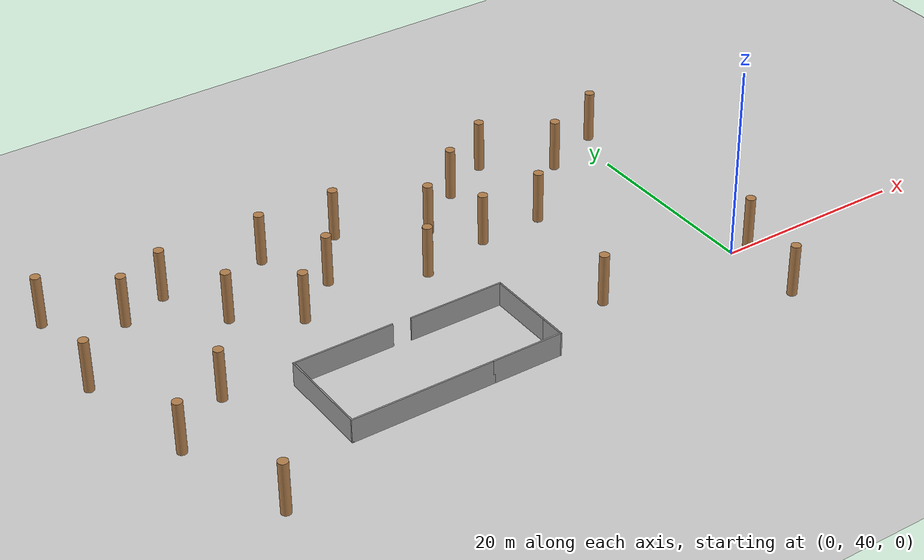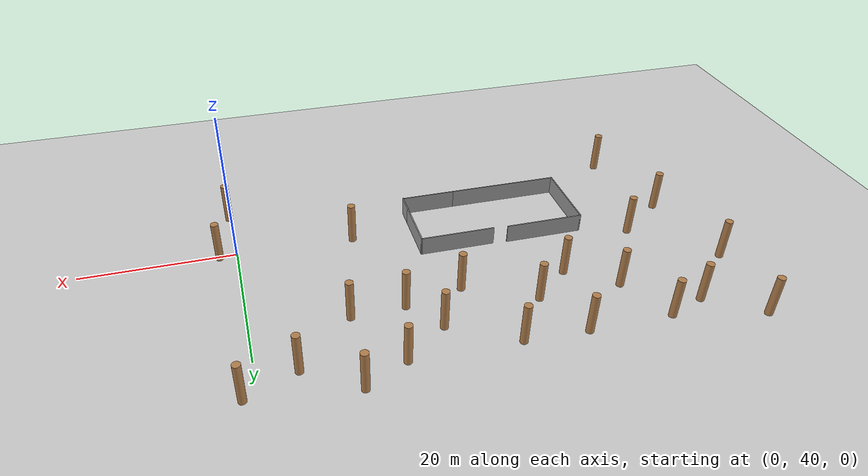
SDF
<sdf version="1.6">
 <world name="default">
  <model name="ground_plane">
   <static>1</static>
   <link name="link">
    <collision name="collision">
     <geometry><plane><normal>0 0 1</normal><size>100 100</size></plane></geometry>
     <surface><friction><ode><mu>100</mu><mu2>50</mu2></ode></friction></surface>
    </collision>
    <visual name="visual">
     <cast_shadows>0</cast_shadows>
     <geometry><plane><normal>0 0 1</normal><size>100 100</size></plane></geometry>
     <material>
      <script><uri>file://media/materials/scripts/gazebo.material</uri><name>Gazebo/Grey</name></script>
     </material>
    </visual>
   </link>
  </model>
  <model name="WoodPillars">
   <link name="link_clone_13">
    <inertial>
     <mass>1</mass>
     <inertia><ixx>0.145833</ixx><ixy>0</ixy><ixz>0</ixz><iyy>0.145833</iyy><iyz>0</iyz><izz>0.125</izz></inertia>
    </inertial>
    <pose>32.2715 -23.3528 -3e-06 0 -0 -0.001289</pose>
    <visual name="visual">
     <geometry><cylinder><radius>0.5</radius><length>5.50507</length></cylinder></geometry>
     <material>
      <script><name>Gazebo/Wood</name><uri>file://media/materials/scripts/gazebo.material</uri></script>
      <shader type="pixel"/>
     </material>
    </visual>
    <collision name="collision">
     <geometry><cylinder><radius>0.5</radius><length>5.50507</length></cylinder></geometry>
     <surface>
      <friction>
       <ode><mu>1</mu><mu2>1</mu2><fdir1>0 0 0</fdir1><slip1>0</slip1><slip2>0</slip2></ode>
       <torsional>
        <coefficient>1</coefficient>
        <patch_radius>0</patch_radius>
        <surface_radius>0</surface_radius>
        <use_patch_radius>1</use_patch_radius>
        <ode><slip>0</slip></ode>
       </torsional>
      </friction>
      <bounce><restitution_coefficient>0</restitution_coefficient><threshold>1e+06</threshold></bounce>
      <contact>
       <collide_without_contact>0</collide_without_contact>
       <collide_without_contact_bitmask>1</collide_without_contact_bitmask>
       <collide_bitmask>1</collide_bitmask>
       <ode>
        <soft_cfm>0</soft_cfm>
        <soft_erp>0.2</soft_erp>
        <kp>1e+13</kp>
        <kd>1</kd>
        <max_vel>0.01</max_vel>
        <min_depth>0</min_depth>
       </ode>
       <bullet>
        <split_impulse>1</split_impulse>
        <split_impulse_penetration_threshold>-0.01</split_impulse_penetration_threshold>
        <soft_cfm>0</soft_cfm>
        <soft_erp>0.2</soft_erp>
        <kp>1e+13</kp>
        <kd>1</kd>
       </bullet>
      </contact>
     </surface>
    </collision>
   </link>
   <link name="link_clone_16">
    <inertial>
     <mass>1</mass>
     <inertia><ixx>0.145833</ixx><ixy>0</ixy><ixz>0</ixz><iyy>0.145833</iyy><iyz>0</iyz><izz>0.125</izz></inertia>
    </inertial>
    <pose>32.9662 -11.9429 -3e-06 0 -0 -0.001289</pose>
    <visual name="visual">
     <geometry><cylinder><radius>0.5</radius><length>5.50507</length></cylinder></geometry>
     <material>
      <script><name>Gazebo/Wood</name><uri>file://media/materials/scripts/gazebo.material</uri></script>
      <shader type="pixel"/>
     </material>
    </visual>
    <collision name="collision">
     <geometry><cylinder><radius>0.5</radius><length>5.50507</length></cylinder></geometry>
     <surface>
      <friction>
       <ode><mu>1</mu><mu2>1</mu2><fdir1>0 0 0</fdir1><slip1>0</slip1><slip2>0</slip2></ode>
       <torsional>
        <coefficient>1</coefficient>
        <patch_radius>0</patch_radius>
        <surface_radius>0</surface_radius>
        <use_patch_radius>1</use_patch_radius>
        <ode><slip>0</slip></ode>
       </torsional>
      </friction>
      <bounce><restitution_coefficient>0</restitution_coefficient><threshold>1e+06</threshold></bounce>
      <contact>
       <collide_without_contact>0</collide_without_contact>
       <collide_without_contact_bitmask>1</collide_without_contact_bitmask>
       <collide_bitmask>1</collide_bitmask>
       <ode>
        <soft_cfm>0</soft_cfm>
        <soft_erp>0.2</soft_erp>
        <kp>1e+13</kp>
        <kd>1</kd>
        <max_vel>0.01</max_vel>
        <min_depth>0</min_depth>
       </ode>
       <bullet>
        <split_impulse>1</split_impulse>
        <split_impulse_penetration_threshold>-0.01</split_impulse_penetration_threshold>
        <soft_cfm>0</soft_cfm>
        <soft_erp>0.2</soft_erp>
        <kp>1e+13</kp>
        <kd>1</kd>
       </bullet>
      </contact>
     </surface>
    </collision>
   </link>
   <link name="link_clone_29">
    <inertial>
     <mass>1</mass>
     <inertia><ixx>0.145833</ixx><ixy>0</ixy><ixz>0</ixz><iyy>0.145833</iyy><iyz>0</iyz><izz>0.125</izz></inertia>
    </inertial>
    <pose>39.4401 -16.2696 -4e-06 0 -0 -0.001289</pose>
    <visual name="visual">
     <geometry><cylinder><radius>0.5</radius><length>5.50507</length></cylinder></geometry>
     <material>
      <script><name>Gazebo/Wood</name><uri>file://media/materials/scripts/gazebo.material</uri></script>
      <shader type="pixel"/>
     </material>
    </visual>
    <collision name="collision">
     <geometry><cylinder><radius>0.5</radius><length>5.50507</length></cylinder></geometry>
     <surface>
      <friction>
       <ode><mu>1</mu><mu2>1</mu2><fdir1>0 0 0</fdir1><slip1>0</slip1><slip2>0</slip2></ode>
       <torsional>
        <coefficient>1</coefficient>
        <patch_radius>0</patch_radius>
        <surface_radius>0</surface_radius>
        <use_patch_radius>1</use_patch_radius>
        <ode><slip>0</slip></ode>
       </torsional>
      </friction>
      <bounce><restitution_coefficient>0</restitution_coefficient><threshold>1e+06</threshold></bounce>
      <contact>
       <collide_without_contact>0</collide_without_contact>
       <collide_without_contact_bitmask>1</collide_without_contact_bitmask>
       <collide_bitmask>1</collide_bitmask>
       <ode>
        <soft_cfm>0</soft_cfm>
        <soft_erp>0.2</soft_erp>
        <kp>1e+13</kp>
        <kd>1</kd>
        <max_vel>0.01</max_vel>
        <min_depth>0</min_depth>
       </ode>
       <bullet>
        <split_impulse>1</split_impulse>
        <split_impulse_penetration_threshold>-0.01</split_impulse_penetration_threshold>
        <soft_cfm>0</soft_cfm>
        <soft_erp>0.2</soft_erp>
        <kp>1e+13</kp>
        <kd>1</kd>
       </bullet>
      </contact>
     </surface>
    </collision>
   </link>
   <static>0</static>
   <pose>-93.4472 79.0245 2.75253 0 -0 0.002245</pose>
  </model>
  <model name="WoodPillars_0">
   <link name="link_clone_13">
    <inertial>
     <mass>1</mass>
     <inertia><ixx>0.145833</ixx><ixy>0</ixy><ixz>0</ixz><iyy>0.145833</iyy><iyz>0</iyz><izz>0.125</izz></inertia>
    </inertial>
    <pose>32.2715 -23.3528 -3e-06 0 -0 -0.001289</pose>
    <visual name="visual">
     <geometry><cylinder><radius>0.5</radius><length>5.50507</length></cylinder></geometry>
     <material>
      <script><name>Gazebo/Wood</name><uri>file://media/materials/scripts/gazebo.material</uri></script>
      <shader type="pixel"/>
     </material>
    </visual>
    <collision name="collision">
     <geometry><cylinder><radius>0.5</radius><length>5.50507</length></cylinder></geometry>
     <surface>
      <friction>
       <ode><mu>1</mu><mu2>1</mu2><fdir1>0 0 0</fdir1><slip1>0</slip1><slip2>0</slip2></ode>
       <torsional>
        <coefficient>1</coefficient>
        <patch_radius>0</patch_radius>
        <surface_radius>0</surface_radius>
        <use_patch_radius>1</use_patch_radius>
        <ode><slip>0</slip></ode>
       </torsional>
      </friction>
      <bounce><restitution_coefficient>0</restitution_coefficient><threshold>1e+06</threshold></bounce>
      <contact>
       <collide_without_contact>0</collide_without_contact>
       <collide_without_contact_bitmask>1</collide_without_contact_bitmask>
       <collide_bitmask>1</collide_bitmask>
       <ode>
        <soft_cfm>0</soft_cfm>
        <soft_erp>0.2</soft_erp>
        <kp>1e+13</kp>
        <kd>1</kd>
        <max_vel>0.01</max_vel>
        <min_depth>0</min_depth>
       </ode>
       <bullet>
        <split_impulse>1</split_impulse>
        <split_impulse_penetration_threshold>-0.01</split_impulse_penetration_threshold>
        <soft_cfm>0</soft_cfm>
        <soft_erp>0.2</soft_erp>
        <kp>1e+13</kp>
        <kd>1</kd>
       </bullet>
      </contact>
     </surface>
    </collision>
   </link>
   <link name="link_clone_14">
    <inertial>
     <mass>1</mass>
     <inertia><ixx>0.145833</ixx><ixy>0</ixy><ixz>0</ixz><iyy>0.145833</iyy><iyz>0</iyz><izz>0.125</izz></inertia>
    </inertial>
    <pose>9.31461 -20.9997 -1e-06 0 -0 -0.001289</pose>
    <visual name="visual">
     <geometry><cylinder><radius>0.5</radius><length>5.50507</length></cylinder></geometry>
     <material>
      <script><name>Gazebo/Wood</name><uri>file://media/materials/scripts/gazebo.material</uri></script>
      <shader type="pixel"/>
     </material>
    </visual>
    <collision name="collision">
     <geometry><cylinder><radius>0.5</radius><length>5.50507</length></cylinder></geometry>
     <surface>
      <friction>
       <ode><mu>1</mu><mu2>1</mu2><fdir1>0 0 0</fdir1><slip1>0</slip1><slip2>0</slip2></ode>
       <torsional>
        <coefficient>1</coefficient>
        <patch_radius>0</patch_radius>
        <surface_radius>0</surface_radius>
        <use_patch_radius>1</use_patch_radius>
        <ode><slip>0</slip></ode>
       </torsional>
      </friction>
      <bounce><restitution_coefficient>0</restitution_coefficient><threshold>1e+06</threshold></bounce>
      <contact>
       <collide_without_contact>0</collide_without_contact>
       <collide_without_contact_bitmask>1</collide_without_contact_bitmask>
       <collide_bitmask>1</collide_bitmask>
       <ode>
        <soft_cfm>0</soft_cfm>
        <soft_erp>0.2</soft_erp>
        <kp>1e+13</kp>
        <kd>1</kd>
        <max_vel>0.01</max_vel>
        <min_depth>0</min_depth>
       </ode>
       <bullet>
        <split_impulse>1</split_impulse>
        <split_impulse_penetration_threshold>-0.01</split_impulse_penetration_threshold>
        <soft_cfm>0</soft_cfm>
        <soft_erp>0.2</soft_erp>
        <kp>1e+13</kp>
        <kd>1</kd>
       </bullet>
      </contact>
     </surface>
    </collision>
   </link>
   <link name="link_clone_15">
    <inertial>
     <mass>1</mass>
     <inertia><ixx>0.145833</ixx><ixy>0</ixy><ixz>0</ixz><iyy>0.145833</iyy><iyz>0</iyz><izz>0.125</izz></inertia>
    </inertial>
    <pose>17.9894 -25.1945 -2e-06 0 -0 -0.001289</pose>
    <visual name="visual">
     <geometry><cylinder><radius>0.5</radius><length>5.50507</length></cylinder></geometry>
     <material>
      <script><name>Gazebo/Wood</name><uri>file://media/materials/scripts/gazebo.material</uri></script>
      <shader type="pixel"/>
     </material>
    </visual>
    <collision name="collision">
     <geometry><cylinder><radius>0.5</radius><length>5.50507</length></cylinder></geometry>
     <surface>
      <friction>
       <ode><mu>1</mu><mu2>1</mu2><fdir1>0 0 0</fdir1><slip1>0</slip1><slip2>0</slip2></ode>
       <torsional>
        <coefficient>1</coefficient>
        <patch_radius>0</patch_radius>
        <surface_radius>0</surface_radius>
        <use_patch_radius>1</use_patch_radius>
        <ode><slip>0</slip></ode>
       </torsional>
      </friction>
      <bounce><restitution_coefficient>0</restitution_coefficient><threshold>1e+06</threshold></bounce>
      <contact>
       <collide_without_contact>0</collide_without_contact>
       <collide_without_contact_bitmask>1</collide_without_contact_bitmask>
       <collide_bitmask>1</collide_bitmask>
       <ode>
        <soft_cfm>0</soft_cfm>
        <soft_erp>0.2</soft_erp>
        <kp>1e+13</kp>
        <kd>1</kd>
        <max_vel>0.01</max_vel>
        <min_depth>0</min_depth>
       </ode>
       <bullet>
        <split_impulse>1</split_impulse>
        <split_impulse_penetration_threshold>-0.01</split_impulse_penetration_threshold>
        <soft_cfm>0</soft_cfm>
        <soft_erp>0.2</soft_erp>
        <kp>1e+13</kp>
        <kd>1</kd>
       </bullet>
      </contact>
     </surface>
    </collision>
   </link>
   <link name="link_clone_16">
    <inertial>
     <mass>1</mass>
     <inertia><ixx>0.145833</ixx><ixy>0</ixy><ixz>0</ixz><iyy>0.145833</iyy><iyz>0</iyz><izz>0.125</izz></inertia>
    </inertial>
    <pose>32.9662 -11.9429 -3e-06 0 -0 -0.001289</pose>
    <visual name="visual">
     <geometry><cylinder><radius>0.5</radius><length>5.50507</length></cylinder></geometry>
     <material>
      <script><name>Gazebo/Wood</name><uri>file://media/materials/scripts/gazebo.material</uri></script>
      <shader type="pixel"/>
     </material>
    </visual>
    <collision name="collision">
     <geometry><cylinder><radius>0.5</radius><length>5.50507</length></cylinder></geometry>
     <surface>
      <friction>
       <ode><mu>1</mu><mu2>1</mu2><fdir1>0 0 0</fdir1><slip1>0</slip1><slip2>0</slip2></ode>
       <torsional>
        <coefficient>1</coefficient>
        <patch_radius>0</patch_radius>
        <surface_radius>0</surface_radius>
        <use_patch_radius>1</use_patch_radius>
        <ode><slip>0</slip></ode>
       </torsional>
      </friction>
      <bounce><restitution_coefficient>0</restitution_coefficient><threshold>1e+06</threshold></bounce>
      <contact>
       <collide_without_contact>0</collide_without_contact>
       <collide_without_contact_bitmask>1</collide_without_contact_bitmask>
       <collide_bitmask>1</collide_bitmask>
       <ode>
        <soft_cfm>0</soft_cfm>
        <soft_erp>0.2</soft_erp>
        <kp>1e+13</kp>
        <kd>1</kd>
        <max_vel>0.01</max_vel>
        <min_depth>0</min_depth>
       </ode>
       <bullet>
        <split_impulse>1</split_impulse>
        <split_impulse_penetration_threshold>-0.01</split_impulse_penetration_threshold>
        <soft_cfm>0</soft_cfm>
        <soft_erp>0.2</soft_erp>
        <kp>1e+13</kp>
        <kd>1</kd>
       </bullet>
      </contact>
     </surface>
    </collision>
   </link>
   <link name="link_clone_26">
    <inertial>
     <mass>1</mass>
     <inertia><ixx>0.145833</ixx><ixy>0</ixy><ixz>0</ixz><iyy>0.145833</iyy><iyz>0</iyz><izz>0.125</izz></inertia>
    </inertial>
    <pose>13.9187 -14.5508 -1e-06 0 -0 -0.001289</pose>
    <visual name="visual">
     <geometry><cylinder><radius>0.5</radius><length>5.50507</length></cylinder></geometry>
     <material>
      <script><name>Gazebo/Wood</name><uri>file://media/materials/scripts/gazebo.material</uri></script>
      <shader type="pixel"/>
     </material>
    </visual>
    <collision name="collision">
     <geometry><cylinder><radius>0.5</radius><length>5.50507</length></cylinder></geometry>
     <surface>
      <friction>
       <ode><mu>1</mu><mu2>1</mu2><fdir1>0 0 0</fdir1><slip1>0</slip1><slip2>0</slip2></ode>
       <torsional>
        <coefficient>1</coefficient>
        <patch_radius>0</patch_radius>
        <surface_radius>0</surface_radius>
        <use_patch_radius>1</use_patch_radius>
        <ode><slip>0</slip></ode>
       </torsional>
      </friction>
      <bounce><restitution_coefficient>0</restitution_coefficient><threshold>1e+06</threshold></bounce>
      <contact>
       <collide_without_contact>0</collide_without_contact>
       <collide_without_contact_bitmask>1</collide_without_contact_bitmask>
       <collide_bitmask>1</collide_bitmask>
       <ode>
        <soft_cfm>0</soft_cfm>
        <soft_erp>0.2</soft_erp>
        <kp>1e+13</kp>
        <kd>1</kd>
        <max_vel>0.01</max_vel>
        <min_depth>0</min_depth>
       </ode>
       <bullet>
        <split_impulse>1</split_impulse>
        <split_impulse_penetration_threshold>-0.01</split_impulse_penetration_threshold>
        <soft_cfm>0</soft_cfm>
        <soft_erp>0.2</soft_erp>
        <kp>1e+13</kp>
        <kd>1</kd>
       </bullet>
      </contact>
     </surface>
    </collision>
   </link>
   <link name="link_clone_27">
    <inertial>
     <mass>1</mass>
     <inertia><ixx>0.145833</ixx><ixy>0</ixy><ixz>0</ixz><iyy>0.145833</iyy><iyz>0</iyz><izz>0.125</izz></inertia>
    </inertial>
    <pose>4.38632 -25.0605 -1e-06 0 -0 -0.001289</pose>
    <visual name="visual">
     <geometry><cylinder><radius>0.5</radius><length>5.50507</length></cylinder></geometry>
     <material>
      <script><name>Gazebo/Wood</name><uri>file://media/materials/scripts/gazebo.material</uri></script>
      <shader type="pixel"/>
     </material>
    </visual>
    <collision name="collision">
     <geometry><cylinder><radius>0.5</radius><length>5.50507</length></cylinder></geometry>
     <surface>
      <friction>
       <ode><mu>1</mu><mu2>1</mu2><fdir1>0 0 0</fdir1><slip1>0</slip1><slip2>0</slip2></ode>
       <torsional>
        <coefficient>1</coefficient>
        <patch_radius>0</patch_radius>
        <surface_radius>0</surface_radius>
        <use_patch_radius>1</use_patch_radius>
        <ode><slip>0</slip></ode>
       </torsional>
      </friction>
      <bounce><restitution_coefficient>0</restitution_coefficient><threshold>1e+06</threshold></bounce>
      <contact>
       <collide_without_contact>0</collide_without_contact>
       <collide_without_contact_bitmask>1</collide_without_contact_bitmask>
       <collide_bitmask>1</collide_bitmask>
       <ode>
        <soft_cfm>0</soft_cfm>
        <soft_erp>0.2</soft_erp>
        <kp>1e+13</kp>
        <kd>1</kd>
        <max_vel>0.01</max_vel>
        <min_depth>0</min_depth>
       </ode>
       <bullet>
        <split_impulse>1</split_impulse>
        <split_impulse_penetration_threshold>-0.01</split_impulse_penetration_threshold>
        <soft_cfm>0</soft_cfm>
        <soft_erp>0.2</soft_erp>
        <kp>1e+13</kp>
        <kd>1</kd>
       </bullet>
      </contact>
     </surface>
    </collision>
   </link>
   <link name="link_clone_28">
    <inertial>
     <mass>1</mass>
     <inertia><ixx>0.145833</ixx><ixy>0</ixy><ixz>0</ixz><iyy>0.145833</iyy><iyz>0</iyz><izz>0.125</izz></inertia>
    </inertial>
    <pose>27.5353 -14.766 -3e-06 0 -0 -0.001289</pose>
    <visual name="visual">
     <geometry><cylinder><radius>0.5</radius><length>5.50507</length></cylinder></geometry>
     <material>
      <script><name>Gazebo/Wood</name><uri>file://media/materials/scripts/gazebo.material</uri></script>
      <shader type="pixel"/>
     </material>
    </visual>
    <collision name="collision">
     <geometry><cylinder><radius>0.5</radius><length>5.50507</length></cylinder></geometry>
     <surface>
      <friction>
       <ode><mu>1</mu><mu2>1</mu2><fdir1>0 0 0</fdir1><slip1>0</slip1><slip2>0</slip2></ode>
       <torsional>
        <coefficient>1</coefficient>
        <patch_radius>0</patch_radius>
        <surface_radius>0</surface_radius>
        <use_patch_radius>1</use_patch_radius>
        <ode><slip>0</slip></ode>
       </torsional>
      </friction>
      <bounce><restitution_coefficient>0</restitution_coefficient><threshold>1e+06</threshold></bounce>
      <contact>
       <collide_without_contact>0</collide_without_contact>
       <collide_without_contact_bitmask>1</collide_without_contact_bitmask>
       <collide_bitmask>1</collide_bitmask>
       <ode>
        <soft_cfm>0</soft_cfm>
        <soft_erp>0.2</soft_erp>
        <kp>1e+13</kp>
        <kd>1</kd>
        <max_vel>0.01</max_vel>
        <min_depth>0</min_depth>
       </ode>
       <bullet>
        <split_impulse>1</split_impulse>
        <split_impulse_penetration_threshold>-0.01</split_impulse_penetration_threshold>
        <soft_cfm>0</soft_cfm>
        <soft_erp>0.2</soft_erp>
        <kp>1e+13</kp>
        <kd>1</kd>
       </bullet>
      </contact>
     </surface>
    </collision>
   </link>
   <link name="link_clone_29">
    <inertial>
     <mass>1</mass>
     <inertia><ixx>0.145833</ixx><ixy>0</ixy><ixz>0</ixz><iyy>0.145833</iyy><iyz>0</iyz><izz>0.125</izz></inertia>
    </inertial>
    <pose>39.4401 -16.2696 -4e-06 0 -0 -0.001289</pose>
    <visual name="visual">
     <geometry><cylinder><radius>0.5</radius><length>5.50507</length></cylinder></geometry>
     <material>
      <script><name>Gazebo/Wood</name><uri>file://media/materials/scripts/gazebo.material</uri></script>
      <shader type="pixel"/>
     </material>
    </visual>
    <collision name="collision">
     <geometry><cylinder><radius>0.5</radius><length>5.50507</length></cylinder></geometry>
     <surface>
      <friction>
       <ode><mu>1</mu><mu2>1</mu2><fdir1>0 0 0</fdir1><slip1>0</slip1><slip2>0</slip2></ode>
       <torsional>
        <coefficient>1</coefficient>
        <patch_radius>0</patch_radius>
        <surface_radius>0</surface_radius>
        <use_patch_radius>1</use_patch_radius>
        <ode><slip>0</slip></ode>
       </torsional>
      </friction>
      <bounce><restitution_coefficient>0</restitution_coefficient><threshold>1e+06</threshold></bounce>
      <contact>
       <collide_without_contact>0</collide_without_contact>
       <collide_without_contact_bitmask>1</collide_without_contact_bitmask>
       <collide_bitmask>1</collide_bitmask>
       <ode>
        <soft_cfm>0</soft_cfm>
        <soft_erp>0.2</soft_erp>
        <kp>1e+13</kp>
        <kd>1</kd>
        <max_vel>0.01</max_vel>
        <min_depth>0</min_depth>
       </ode>
       <bullet>
        <split_impulse>1</split_impulse>
        <split_impulse_penetration_threshold>-0.01</split_impulse_penetration_threshold>
        <soft_cfm>0</soft_cfm>
        <soft_erp>0.2</soft_erp>
        <kp>1e+13</kp>
        <kd>1</kd>
       </bullet>
      </contact>
     </surface>
    </collision>
   </link>
   <link name="link_clone_32">
    <inertial>
     <mass>1</mass>
     <inertia><ixx>0.145833</ixx><ixy>0</ixy><ixz>0</ixz><iyy>0.145833</iyy><iyz>0</iyz><izz>0.125</izz></inertia>
    </inertial>
    <pose>-4.82669 -14.2698 -0 0 -0 -0.001289</pose>
    <visual name="visual">
     <geometry><cylinder><radius>0.5</radius><length>5.50507</length></cylinder></geometry>
     <material>
      <script><name>Gazebo/Wood</name><uri>file://media/materials/scripts/gazebo.material</uri></script>
      <shader type="pixel"/>
     </material>
    </visual>
    <collision name="collision">
     <geometry><cylinder><radius>0.5</radius><length>5.50507</length></cylinder></geometry>
     <surface>
      <friction>
       <ode><mu>1</mu><mu2>1</mu2><fdir1>0 0 0</fdir1><slip1>0</slip1><slip2>0</slip2></ode>
       <torsional>
        <coefficient>1</coefficient>
        <patch_radius>0</patch_radius>
        <surface_radius>0</surface_radius>
        <use_patch_radius>1</use_patch_radius>
        <ode><slip>0</slip></ode>
       </torsional>
      </friction>
      <bounce><restitution_coefficient>0</restitution_coefficient><threshold>1e+06</threshold></bounce>
      <contact>
       <collide_without_contact>0</collide_without_contact>
       <collide_without_contact_bitmask>1</collide_without_contact_bitmask>
       <collide_bitmask>1</collide_bitmask>
       <ode>
        <soft_cfm>0</soft_cfm>
        <soft_erp>0.2</soft_erp>
        <kp>1e+13</kp>
        <kd>1</kd>
        <max_vel>0.01</max_vel>
        <min_depth>0</min_depth>
       </ode>
       <bullet>
        <split_impulse>1</split_impulse>
        <split_impulse_penetration_threshold>-0.01</split_impulse_penetration_threshold>
        <soft_cfm>0</soft_cfm>
        <soft_erp>0.2</soft_erp>
        <kp>1e+13</kp>
        <kd>1</kd>
       </bullet>
      </contact>
     </surface>
    </collision>
   </link>
   <link name="link_clone_34">
    <inertial>
     <mass>1</mass>
     <inertia><ixx>0.145833</ixx><ixy>0</ixy><ixz>0</ixz><iyy>0.145833</iyy><iyz>0</iyz><izz>0.125</izz></inertia>
    </inertial>
    <pose>25.4673 -23.5908 -3e-06 0 -0 -0.001289</pose>
    <visual name="visual">
     <geometry><cylinder><radius>0.5</radius><length>5.50507</length></cylinder></geometry>
     <material>
      <script><name>Gazebo/Wood</name><uri>file://media/materials/scripts/gazebo.material</uri></script>
      <shader type="pixel"/>
     </material>
    </visual>
    <collision name="collision">
     <geometry><cylinder><radius>0.5</radius><length>5.50507</length></cylinder></geometry>
     <surface>
      <friction>
       <ode><mu>1</mu><mu2>1</mu2><fdir1>0 0 0</fdir1><slip1>0</slip1><slip2>0</slip2></ode>
       <torsional>
        <coefficient>1</coefficient>
        <patch_radius>0</patch_radius>
        <surface_radius>0</surface_radius>
        <use_patch_radius>1</use_patch_radius>
        <ode><slip>0</slip></ode>
       </torsional>
      </friction>
      <bounce><restitution_coefficient>0</restitution_coefficient><threshold>1e+06</threshold></bounce>
      <contact>
       <collide_without_contact>0</collide_without_contact>
       <collide_without_contact_bitmask>1</collide_without_contact_bitmask>
       <collide_bitmask>1</collide_bitmask>
       <ode>
        <soft_cfm>0</soft_cfm>
        <soft_erp>0.2</soft_erp>
        <kp>1e+13</kp>
        <kd>1</kd>
        <max_vel>0.01</max_vel>
        <min_depth>0</min_depth>
       </ode>
       <bullet>
        <split_impulse>1</split_impulse>
        <split_impulse_penetration_threshold>-0.01</split_impulse_penetration_threshold>
        <soft_cfm>0</soft_cfm>
        <soft_erp>0.2</soft_erp>
        <kp>1e+13</kp>
        <kd>1</kd>
       </bullet>
      </contact>
     </surface>
    </collision>
   </link>
   <link name="link_clone_7">
    <inertial>
     <mass>1</mass>
     <inertia><ixx>0.145833</ixx><ixy>0</ixy><ixz>0</ixz><iyy>0.145833</iyy><iyz>0</iyz><izz>0.125</izz></inertia>
    </inertial>
    <pose>22.0331 -19.0814 -2e-06 0 -0 -0.001289</pose>
    <visual name="visual">
     <geometry><cylinder><radius>0.5</radius><length>5.50507</length></cylinder></geometry>
     <material>
      <script><name>Gazebo/Wood</name><uri>file://media/materials/scripts/gazebo.material</uri></script>
      <shader type="pixel"/>
     </material>
    </visual>
    <collision name="collision">
     <geometry><cylinder><radius>0.5</radius><length>5.50507</length></cylinder></geometry>
     <surface>
      <friction>
       <ode><mu>1</mu><mu2>1</mu2><fdir1>0 0 0</fdir1><slip1>0</slip1><slip2>0</slip2></ode>
       <torsional>
        <coefficient>1</coefficient>
        <patch_radius>0</patch_radius>
        <surface_radius>0</surface_radius>
        <use_patch_radius>1</use_patch_radius>
        <ode><slip>0</slip></ode>
       </torsional>
      </friction>
      <bounce><restitution_coefficient>0</restitution_coefficient><threshold>1e+06</threshold></bounce>
      <contact>
       <collide_without_contact>0</collide_without_contact>
       <collide_without_contact_bitmask>1</collide_without_contact_bitmask>
       <collide_bitmask>1</collide_bitmask>
       <ode>
        <soft_cfm>0</soft_cfm>
        <soft_erp>0.2</soft_erp>
        <kp>1e+13</kp>
        <kd>1</kd>
        <max_vel>0.01</max_vel>
        <min_depth>0</min_depth>
       </ode>
       <bullet>
        <split_impulse>1</split_impulse>
        <split_impulse_penetration_threshold>-0.01</split_impulse_penetration_threshold>
        <soft_cfm>0</soft_cfm>
        <soft_erp>0.2</soft_erp>
        <kp>1e+13</kp>
        <kd>1</kd>
       </bullet>
      </contact>
     </surface>
    </collision>
   </link>
   <link name="link_clone_8">
    <inertial>
     <mass>1</mass>
     <inertia><ixx>0.145833</ixx><ixy>0</ixy><ixz>0</ixz><iyy>0.145833</iyy><iyz>0</iyz><izz>0.125</izz></inertia>
    </inertial>
    <pose>5.87636 -14.2578 -1e-06 0 -0 -0.001289</pose>
    <visual name="visual">
     <geometry><cylinder><radius>0.5</radius><length>5.50507</length></cylinder></geometry>
     <material>
      <script><name>Gazebo/Wood</name><uri>file://media/materials/scripts/gazebo.material</uri></script>
      <shader type="pixel"/>
     </material>
    </visual>
    <collision name="collision">
     <geometry><cylinder><radius>0.5</radius><length>5.50507</length></cylinder></geometry>
     <surface>
      <friction>
       <ode><mu>1</mu><mu2>1</mu2><fdir1>0 0 0</fdir1><slip1>0</slip1><slip2>0</slip2></ode>
       <torsional>
        <coefficient>1</coefficient>
        <patch_radius>0</patch_radius>
        <surface_radius>0</surface_radius>
        <use_patch_radius>1</use_patch_radius>
        <ode><slip>0</slip></ode>
       </torsional>
      </friction>
      <bounce><restitution_coefficient>0</restitution_coefficient><threshold>1e+06</threshold></bounce>
      <contact>
       <collide_without_contact>0</collide_without_contact>
       <collide_without_contact_bitmask>1</collide_without_contact_bitmask>
       <collide_bitmask>1</collide_bitmask>
       <ode>
        <soft_cfm>0</soft_cfm>
        <soft_erp>0.2</soft_erp>
        <kp>1e+13</kp>
        <kd>1</kd>
        <max_vel>0.01</max_vel>
        <min_depth>0</min_depth>
       </ode>
       <bullet>
        <split_impulse>1</split_impulse>
        <split_impulse_penetration_threshold>-0.01</split_impulse_penetration_threshold>
        <soft_cfm>0</soft_cfm>
        <soft_erp>0.2</soft_erp>
        <kp>1e+13</kp>
        <kd>1</kd>
       </bullet>
      </contact>
     </surface>
    </collision>
   </link>
   <link name="link_clone_9">
    <inertial>
     <mass>1</mass>
     <inertia><ixx>0.145833</ixx><ixy>0</ixy><ixz>0</ixz><iyy>0.145833</iyy><iyz>0</iyz><izz>0.125</izz></inertia>
    </inertial>
    <pose>-1.43964 -21.0028 0 0 -0 -0.001289</pose>
    <visual name="visual">
     <geometry><cylinder><radius>0.5</radius><length>5.50507</length></cylinder></geometry>
     <material>
      <script><name>Gazebo/Wood</name><uri>file://media/materials/scripts/gazebo.material</uri></script>
      <shader type="pixel"/>
     </material>
    </visual>
    <collision name="collision">
     <geometry><cylinder><radius>0.5</radius><length>5.50507</length></cylinder></geometry>
     <surface>
      <friction>
       <ode><mu>1</mu><mu2>1</mu2><fdir1>0 0 0</fdir1><slip1>0</slip1><slip2>0</slip2></ode>
       <torsional>
        <coefficient>1</coefficient>
        <patch_radius>0</patch_radius>
        <surface_radius>0</surface_radius>
        <use_patch_radius>1</use_patch_radius>
        <ode><slip>0</slip></ode>
       </torsional>
      </friction>
      <bounce><restitution_coefficient>0</restitution_coefficient><threshold>1e+06</threshold></bounce>
      <contact>
       <collide_without_contact>0</collide_without_contact>
       <collide_without_contact_bitmask>1</collide_without_contact_bitmask>
       <collide_bitmask>1</collide_bitmask>
       <ode>
        <soft_cfm>0</soft_cfm>
        <soft_erp>0.2</soft_erp>
        <kp>1e+13</kp>
        <kd>1</kd>
        <max_vel>0.01</max_vel>
        <min_depth>0</min_depth>
       </ode>
       <bullet>
        <split_impulse>1</split_impulse>
        <split_impulse_penetration_threshold>-0.01</split_impulse_penetration_threshold>
        <soft_cfm>0</soft_cfm>
        <soft_erp>0.2</soft_erp>
        <kp>1e+13</kp>
        <kd>1</kd>
       </bullet>
      </contact>
     </surface>
    </collision>
   </link>
   <static>0</static>
   <pose>-44.3459 78.9226 2.75253 0 -0 0.001548</pose>
  </model>
  <model name="WoodPillars_1">
   <link name="link_clone_32">
    <inertial>
     <mass>1</mass>
     <inertia><ixx>0.145833</ixx><ixy>0</ixy><ixz>0</ixz><iyy>0.145833</iyy><iyz>0</iyz><izz>0.125</izz></inertia>
    </inertial>
    <pose>-4.82669 -14.2698 -0 0 -0 -0.001289</pose>
    <visual name="visual">
     <geometry><cylinder><radius>0.5</radius><length>5.50507</length></cylinder></geometry>
     <material>
      <script><name>Gazebo/Wood</name><uri>file://media/materials/scripts/gazebo.material</uri></script>
      <shader type="pixel"/>
     </material>
    </visual>
    <collision name="collision">
     <geometry><cylinder><radius>0.5</radius><length>5.50507</length></cylinder></geometry>
     <surface>
      <friction>
       <ode><mu>1</mu><mu2>1</mu2><fdir1>0 0 0</fdir1><slip1>0</slip1><slip2>0</slip2></ode>
       <torsional>
        <coefficient>1</coefficient>
        <patch_radius>0</patch_radius>
        <surface_radius>0</surface_radius>
        <use_patch_radius>1</use_patch_radius>
        <ode><slip>0</slip></ode>
       </torsional>
      </friction>
      <bounce><restitution_coefficient>0</restitution_coefficient><threshold>1e+06</threshold></bounce>
      <contact>
       <collide_without_contact>0</collide_without_contact>
       <collide_without_contact_bitmask>1</collide_without_contact_bitmask>
       <collide_bitmask>1</collide_bitmask>
       <ode>
        <soft_cfm>0</soft_cfm>
        <soft_erp>0.2</soft_erp>
        <kp>1e+13</kp>
        <kd>1</kd>
        <max_vel>0.01</max_vel>
        <min_depth>0</min_depth>
       </ode>
       <bullet>
        <split_impulse>1</split_impulse>
        <split_impulse_penetration_threshold>-0.01</split_impulse_penetration_threshold>
        <soft_cfm>0</soft_cfm>
        <soft_erp>0.2</soft_erp>
        <kp>1e+13</kp>
        <kd>1</kd>
       </bullet>
      </contact>
     </surface>
    </collision>
   </link>
   <static>0</static>
   <pose>6.34212 79.7178 2.75253 0 -0 0.001542</pose>
  </model>
  <model name="WoodPillars_6">
   <link name="link_clone_19">
    <inertial>
     <mass>1</mass>
     <inertia><ixx>0.145833</ixx><ixy>0</ixy><ixz>0</ixz><iyy>0.145833</iyy><iyz>0</iyz><izz>0.125</izz></inertia>
    </inertial>
    <pose>-3.28611 11.8265 -0 0 -0 -0.001289</pose>
    <visual name="visual">
     <geometry><cylinder><radius>0.5</radius><length>5.50507</length></cylinder></geometry>
     <material>
      <script><name>Gazebo/Wood</name><uri>file://media/materials/scripts/gazebo.material</uri></script>
      <shader type="pixel"/>
     </material>
    </visual>
    <collision name="collision">
     <geometry><cylinder><radius>0.5</radius><length>5.50507</length></cylinder></geometry>
     <surface>
      <friction>
       <ode><mu>1</mu><mu2>1</mu2><fdir1>0 0 0</fdir1><slip1>0</slip1><slip2>0</slip2></ode>
       <torsional>
        <coefficient>1</coefficient>
        <patch_radius>0</patch_radius>
        <surface_radius>0</surface_radius>
        <use_patch_radius>1</use_patch_radius>
        <ode><slip>0</slip></ode>
       </torsional>
      </friction>
      <bounce><restitution_coefficient>0</restitution_coefficient><threshold>1e+06</threshold></bounce>
      <contact>
       <collide_without_contact>0</collide_without_contact>
       <collide_without_contact_bitmask>1</collide_without_contact_bitmask>
       <collide_bitmask>1</collide_bitmask>
       <ode>
        <soft_cfm>0</soft_cfm>
        <soft_erp>0.2</soft_erp>
        <kp>1e+13</kp>
        <kd>1</kd>
        <max_vel>0.01</max_vel>
        <min_depth>0</min_depth>
       </ode>
       <bullet>
        <split_impulse>1</split_impulse>
        <split_impulse_penetration_threshold>-0.01</split_impulse_penetration_threshold>
        <soft_cfm>0</soft_cfm>
        <soft_erp>0.2</soft_erp>
        <kp>1e+13</kp>
        <kd>1</kd>
       </bullet>
      </contact>
     </surface>
    </collision>
   </link>
   <link name="link_clone_35">
    <inertial>
     <mass>1</mass>
     <inertia><ixx>0.145833</ixx><ixy>0</ixy><ixz>0</ixz><iyy>0.145833</iyy><iyz>0</iyz><izz>0.125</izz></inertia>
    </inertial>
    <pose>-5.14728 3.10998 -0 0 -0 -0.001289</pose>
    <visual name="visual">
     <geometry><cylinder><radius>0.5</radius><length>5.50507</length></cylinder></geometry>
     <material>
      <script><name>Gazebo/Wood</name><uri>file://media/materials/scripts/gazebo.material</uri></script>
      <shader type="pixel"/>
     </material>
    </visual>
    <collision name="collision">
     <geometry><cylinder><radius>0.5</radius><length>5.50507</length></cylinder></geometry>
     <surface>
      <friction>
       <ode><mu>1</mu><mu2>1</mu2><fdir1>0 0 0</fdir1><slip1>0</slip1><slip2>0</slip2></ode>
       <torsional>
        <coefficient>1</coefficient>
        <patch_radius>0</patch_radius>
        <surface_radius>0</surface_radius>
        <use_patch_radius>1</use_patch_radius>
        <ode><slip>0</slip></ode>
       </torsional>
      </friction>
      <bounce><restitution_coefficient>0</restitution_coefficient><threshold>1e+06</threshold></bounce>
      <contact>
       <collide_without_contact>0</collide_without_contact>
       <collide_without_contact_bitmask>1</collide_without_contact_bitmask>
       <collide_bitmask>1</collide_bitmask>
       <ode>
        <soft_cfm>0</soft_cfm>
        <soft_erp>0.2</soft_erp>
        <kp>1e+13</kp>
        <kd>1</kd>
        <max_vel>0.01</max_vel>
        <min_depth>0</min_depth>
       </ode>
       <bullet>
        <split_impulse>1</split_impulse>
        <split_impulse_penetration_threshold>-0.01</split_impulse_penetration_threshold>
        <soft_cfm>0</soft_cfm>
        <soft_erp>0.2</soft_erp>
        <kp>1e+13</kp>
        <kd>1</kd>
       </bullet>
      </contact>
     </surface>
    </collision>
   </link>
   <static>0</static>
   <pose>5.51216 28.398 2.75253 0 -0 0.001688</pose>
  </model>
  <model name="WoodPillars_9">
   <link name="link_clone_12">
    <inertial>
     <mass>1</mass>
     <inertia><ixx>0.145833</ixx><ixy>0</ixy><ixz>0</ixz><iyy>0.145833</iyy><iyz>0</iyz><izz>0.125</izz></inertia>
    </inertial>
    <pose>36.6063 2.3916 -3e-06 0 -0 -0.001289</pose>
    <visual name="visual">
     <geometry><cylinder><radius>0.5</radius><length>5.50507</length></cylinder></geometry>
     <material>
      <script><name>Gazebo/Wood</name><uri>file://media/materials/scripts/gazebo.material</uri></script>
      <shader type="pixel"/>
     </material>
    </visual>
    <collision name="collision">
     <geometry><cylinder><radius>0.5</radius><length>5.50507</length></cylinder></geometry>
     <surface>
      <friction>
       <ode><mu>1</mu><mu2>1</mu2><fdir1>0 0 0</fdir1><slip1>0</slip1><slip2>0</slip2></ode>
       <torsional>
        <coefficient>1</coefficient>
        <patch_radius>0</patch_radius>
        <surface_radius>0</surface_radius>
        <use_patch_radius>1</use_patch_radius>
        <ode><slip>0</slip></ode>
       </torsional>
      </friction>
      <bounce><restitution_coefficient>0</restitution_coefficient><threshold>1e+06</threshold></bounce>
      <contact>
       <collide_without_contact>0</collide_without_contact>
       <collide_without_contact_bitmask>1</collide_without_contact_bitmask>
       <collide_bitmask>1</collide_bitmask>
       <ode>
        <soft_cfm>0</soft_cfm>
        <soft_erp>0.2</soft_erp>
        <kp>1e+13</kp>
        <kd>1</kd>
        <max_vel>0.01</max_vel>
        <min_depth>0</min_depth>
       </ode>
       <bullet>
        <split_impulse>1</split_impulse>
        <split_impulse_penetration_threshold>-0.01</split_impulse_penetration_threshold>
        <soft_cfm>0</soft_cfm>
        <soft_erp>0.2</soft_erp>
        <kp>1e+13</kp>
        <kd>1</kd>
       </bullet>
      </contact>
     </surface>
    </collision>
   </link>
   <link name="link_clone_33">
    <inertial>
     <mass>1</mass>
     <inertia><ixx>0.145833</ixx><ixy>0</ixy><ixz>0</ixz><iyy>0.145833</iyy><iyz>0</iyz><izz>0.125</izz></inertia>
    </inertial>
    <pose>39.6457 18.8804 -3e-06 0 -0 -0.001289</pose>
    <visual name="visual">
     <geometry><cylinder><radius>0.5</radius><length>5.50507</length></cylinder></geometry>
     <material>
      <script><name>Gazebo/Wood</name><uri>file://media/materials/scripts/gazebo.material</uri></script>
      <shader type="pixel"/>
     </material>
    </visual>
    <collision name="collision">
     <geometry><cylinder><radius>0.5</radius><length>5.50507</length></cylinder></geometry>
     <surface>
      <friction>
       <ode><mu>1</mu><mu2>1</mu2><fdir1>0 0 0</fdir1><slip1>0</slip1><slip2>0</slip2></ode>
       <torsional>
        <coefficient>1</coefficient>
        <patch_radius>0</patch_radius>
        <surface_radius>0</surface_radius>
        <use_patch_radius>1</use_patch_radius>
        <ode><slip>0</slip></ode>
       </torsional>
      </friction>
      <bounce><restitution_coefficient>0</restitution_coefficient><threshold>1e+06</threshold></bounce>
      <contact>
       <collide_without_contact>0</collide_without_contact>
       <collide_without_contact_bitmask>1</collide_without_contact_bitmask>
       <collide_bitmask>1</collide_bitmask>
       <ode>
        <soft_cfm>0</soft_cfm>
        <soft_erp>0.2</soft_erp>
        <kp>1e+13</kp>
        <kd>1</kd>
        <max_vel>0.01</max_vel>
        <min_depth>0</min_depth>
       </ode>
       <bullet>
        <split_impulse>1</split_impulse>
        <split_impulse_penetration_threshold>-0.01</split_impulse_penetration_threshold>
        <soft_cfm>0</soft_cfm>
        <soft_erp>0.2</soft_erp>
        <kp>1e+13</kp>
        <kd>1</kd>
       </bullet>
      </contact>
     </surface>
    </collision>
   </link>
   <link name="link_clone_5">
    <inertial>
     <mass>1</mass>
     <inertia><ixx>0.145833</ixx><ixy>0</ixy><ixz>0</ixz><iyy>0.145833</iyy><iyz>0</iyz><izz>0.125</izz></inertia>
    </inertial>
    <pose>33.2189 14.316 -3e-06 0 -0 -0.001289</pose>
    <visual name="visual">
     <geometry><cylinder><radius>0.5</radius><length>5.50507</length></cylinder></geometry>
     <material>
      <script><name>Gazebo/Wood</name><uri>file://media/materials/scripts/gazebo.material</uri></script>
      <shader type="pixel"/>
     </material>
    </visual>
    <collision name="collision">
     <geometry><cylinder><radius>0.5</radius><length>5.50507</length></cylinder></geometry>
     <surface>
      <friction>
       <ode><mu>1</mu><mu2>1</mu2><fdir1>0 0 0</fdir1><slip1>0</slip1><slip2>0</slip2></ode>
       <torsional>
        <coefficient>1</coefficient>
        <patch_radius>0</patch_radius>
        <surface_radius>0</surface_radius>
        <use_patch_radius>1</use_patch_radius>
        <ode><slip>0</slip></ode>
       </torsional>
      </friction>
      <bounce><restitution_coefficient>0</restitution_coefficient><threshold>1e+06</threshold></bounce>
      <contact>
       <collide_without_contact>0</collide_without_contact>
       <collide_without_contact_bitmask>1</collide_without_contact_bitmask>
       <collide_bitmask>1</collide_bitmask>
       <ode>
        <soft_cfm>0</soft_cfm>
        <soft_erp>0.2</soft_erp>
        <kp>1e+13</kp>
        <kd>1</kd>
        <max_vel>0.01</max_vel>
        <min_depth>0</min_depth>
       </ode>
       <bullet>
        <split_impulse>1</split_impulse>
        <split_impulse_penetration_threshold>-0.01</split_impulse_penetration_threshold>
        <soft_cfm>0</soft_cfm>
        <soft_erp>0.2</soft_erp>
        <kp>1e+13</kp>
        <kd>1</kd>
       </bullet>
      </contact>
     </surface>
    </collision>
   </link>
   <static>0</static>
   <pose>-91.6289 28.871 2.75253 0 -0 0.001496</pose>
  </model>
  <model name="Cangku">
   <pose>-34.5971 40.959 0 0 -0 0</pose>
   <link name="Wall_0">
    <collision name="Wall_0_Collision">
     <geometry><box><size>15 0.15 2.5</size></box></geometry>
     <pose>0 0 1.25 0 -0 0</pose>
    </collision>
    <visual name="Wall_0_Visual">
     <pose>0 0 1.25 0 -0 0</pose>
     <geometry><box><size>15 0.15 2.5</size></box></geometry>
     <material>
      <script><uri>file://media/materials/scripts/gazebo.material</uri><name>Gazebo/Grey</name></script>
      <ambient>1 1 1 1</ambient>
     </material>
     <meta><layer>0</layer></meta>
    </visual>
    <pose>-3.675 -4.925 0 0 -0 0</pose>
   </link>
   <link name="Wall_1">
    <collision name="Wall_1_Collision">
     <geometry><box><size>7.5 0.15 2.5</size></box></geometry>
     <pose>0 0 1.25 0 -0 0</pose>
    </collision>
    <visual name="Wall_1_Visual">
     <pose>0 0 1.25 0 -0 0</pose>
     <geometry><box><size>7.5 0.15 2.5</size></box></geometry>
     <material>
      <script><uri>file://media/materials/scripts/gazebo.material</uri><name>Gazebo/Grey</name></script>
      <ambient>1 1 1 1</ambient>
     </material>
     <meta><layer>0</layer></meta>
    </visual>
    <pose>7.425 -4.925 0 0 -0 0</pose>
   </link>
   <link name="Wall_10">
    <collision name="Wall_10_Collision">
     <geometry><box><size>0.15 0.15 2.5</size></box></geometry>
     <pose>0 0 1.25 0 -0 0</pose>
    </collision>
    <visual name="Wall_10_Visual">
     <pose>0 0 1.25 0 -0 0</pose>
     <geometry><box><size>0.15 0.15 2.5</size></box></geometry>
     <material>
      <script><uri>file://media/materials/scripts/gazebo.material</uri><name>Gazebo/Grey</name></script>
      <ambient>1 1 1 1</ambient>
     </material>
     <meta><layer>0</layer></meta>
    </visual>
    <pose>-11.1 4.675 0 0 -0 0</pose>
   </link>
   <link name="Wall_11">
    <collision name="Wall_11_Collision">
     <geometry><box><size>0.15 0.15 2.5</size></box></geometry>
     <pose>0 0 1.25 0 -0 0</pose>
    </collision>
    <visual name="Wall_11_Visual">
     <pose>0 0 1.25 0 -0 0</pose>
     <geometry><box><size>0.15 0.15 2.5</size></box></geometry>
     <material>
      <script><uri>file://media/materials/scripts/gazebo.material</uri><name>Gazebo/Grey</name></script>
      <ambient>1 1 1 1</ambient>
     </material>
     <meta><layer>0</layer></meta>
    </visual>
    <pose>-11.1 4.675 0 0 -0 0</pose>
   </link>
   <link name="Wall_12">
    <collision name="Wall_12_Collision">
     <geometry><box><size>0.15 0.15 2.5</size></box></geometry>
     <pose>0 0 1.25 0 -0 0</pose>
    </collision>
    <visual name="Wall_12_Visual">
     <pose>0 0 1.25 0 -0 0</pose>
     <geometry><box><size>0.15 0.15 2.5</size></box></geometry>
     <material>
      <script><uri>file://media/materials/scripts/gazebo.material</uri><name>Gazebo/Grey</name></script>
      <ambient>1 1 1 1</ambient>
     </material>
     <meta><layer>0</layer></meta>
    </visual>
    <pose>-11.1 4.675 0 0 -0 0</pose>
   </link>
   <link name="Wall_14">
    <collision name="Wall_14_Collision">
     <geometry><box><size>10 0.15 2.5</size></box></geometry>
     <pose>0 0 1.25 0 -0 0</pose>
    </collision>
    <visual name="Wall_14_Visual">
     <pose>0 0 1.25 0 -0 0</pose>
     <geometry><box><size>10 0.15 2.5</size></box></geometry>
     <material>
      <script><uri>file://media/materials/scripts/gazebo.material</uri><name>Gazebo/Grey</name></script>
      <ambient>1 1 1 1</ambient>
     </material>
     <meta><layer>0</layer></meta>
    </visual>
    <pose>-11.1 -0 0 0 -0 1.5708</pose>
   </link>
   <link name="Wall_2">
    <collision name="Wall_2_Collision">
     <geometry><box><size>2.75 0.15 2.5</size></box></geometry>
     <pose>0 0 1.25 0 -0 0</pose>
    </collision>
    <visual name="Wall_2_Visual">
     <pose>0 0 1.25 0 -0 0</pose>
     <geometry><box><size>2.75 0.15 2.5</size></box></geometry>
     <material>
      <script><uri>file://media/materials/scripts/gazebo.material</uri><name>Gazebo/Grey</name></script>
      <ambient>1 1 1 1</ambient>
     </material>
     <meta><layer>0</layer></meta>
    </visual>
    <pose>11.1 -3.625 0 0 -0 1.5708</pose>
   </link>
   <link name="Wall_21">
    <collision name="Wall_21_Collision">
     <geometry><box><size>7.25 0.15 2.5</size></box></geometry>
     <pose>0 0 1.25 0 -0 0</pose>
    </collision>
    <visual name="Wall_21_Visual">
     <pose>0 0 1.25 0 -0 0</pose>
     <geometry><box><size>7.25 0.15 2.5</size></box></geometry>
     <material>
      <script><uri>file://media/materials/scripts/gazebo.material</uri><name>Gazebo/Grey</name></script>
      <ambient>1 1 1 1</ambient>
     </material>
     <meta><layer>0</layer></meta>
    </visual>
    <pose>11.1 1.225 0 0 -0 1.5708</pose>
   </link>
   <link name="Wall_22">
    <collision name="Wall_22_Collision">
     <geometry><box><size>10 0.15 2.5</size></box></geometry>
     <pose>0 0 1.25 0 -0 0</pose>
    </collision>
    <visual name="Wall_22_Visual">
     <pose>0 0 1.25 0 -0 0</pose>
     <geometry><box><size>10 0.15 2.5</size></box></geometry>
     <material>
      <script><uri>file://media/materials/scripts/gazebo.material</uri><name>Gazebo/Grey</name></script>
      <ambient>1 1 1 1</ambient>
     </material>
     <meta><layer>0</layer></meta>
    </visual>
    <pose>6.175 4.775 0 0 -0 3.14159</pose>
   </link>
   <link name="Wall_24">
    <collision name="Wall_24_Collision">
     <geometry><box><size>10.5 0.15 2.5</size></box></geometry>
     <pose>0 0 1.25 0 -0 0</pose>
    </collision>
    <visual name="Wall_24_Visual">
     <pose>0 0 1.25 0 -0 0</pose>
     <geometry><box><size>10.5 0.15 2.5</size></box></geometry>
     <material>
      <script><uri>file://media/materials/scripts/gazebo.material</uri><name>Gazebo/Grey</name></script>
      <ambient>1 1 1 1</ambient>
     </material>
     <meta><layer>0</layer></meta>
    </visual>
    <pose>-5.925 4.925 0 0 -0 0</pose>
   </link>
   <link name="Wall_9">
    <collision name="Wall_9_Collision">
     <geometry><box><size>0.15 0.15 2.5</size></box></geometry>
     <pose>0 0 1.25 0 -0 0</pose>
    </collision>
    <visual name="Wall_9_Visual">
     <pose>0 0 1.25 0 -0 0</pose>
     <geometry><box><size>0.15 0.15 2.5</size></box></geometry>
     <material>
      <script><uri>file://media/materials/scripts/gazebo.material</uri><name>Gazebo/Grey</name></script>
      <ambient>1 1 1 1</ambient>
     </material>
     <meta><layer>0</layer></meta>
    </visual>
    <pose>-11.1 4.675 0 0 -0 0</pose>
   </link>
   <static>1</static>
  </model>
  <model name="WoodPillar_1">
   <link name="link">
    <inertial>
     <mass>1</mass>
     <inertia><ixx>0.145833</ixx><ixy>0</ixy><ixz>0</ixz><iyy>0.145833</iyy><iyz>0</iyz><izz>0.125</izz></inertia>
    </inertial>
    <visual name="visual">
     <geometry><cylinder><radius>0.5</radius><length>5.50507</length></cylinder></geometry>
     <material>
      <script><name>Gazebo/Wood</name><uri>file://media/materials/scripts/gazebo.material</uri></script>
     </material>
    </visual>
    <collision name="collision">
     <geometry><cylinder><radius>0.5</radius><length>5.50507</length></cylinder></geometry>
     <surface>
      <friction>
       <ode><mu>1</mu><mu2>1</mu2><fdir1>0 0 0</fdir1><slip1>0</slip1><slip2>0</slip2></ode>
       <torsional>
        <coefficient>1</coefficient>
        <patch_radius>0</patch_radius>
        <surface_radius>0</surface_radius>
        <use_patch_radius>1</use_patch_radius>
        <ode><slip>0</slip></ode>
       </torsional>
      </friction>
      <bounce><restitution_coefficient>0</restitution_coefficient><threshold>1e+06</threshold></bounce>
      <contact>
       <collide_without_contact>0</collide_without_contact>
       <collide_without_contact_bitmask>1</collide_without_contact_bitmask>
       <collide_bitmask>1</collide_bitmask>
       <ode>
        <soft_cfm>0</soft_cfm>
        <soft_erp>0.2</soft_erp>
        <kp>1e+13</kp>
        <kd>1</kd>
        <max_vel>0.01</max_vel>
        <min_depth>0</min_depth>
       </ode>
       <bullet>
        <split_impulse>1</split_impulse>
        <split_impulse_penetration_threshold>-0.01</split_impulse_penetration_threshold>
        <soft_cfm>0</soft_cfm>
        <soft_erp>0.2</soft_erp>
        <kp>1e+13</kp>
        <kd>1</kd>
       </bullet>
      </contact>
     </surface>
    </collision>
   </link>
   <static>0</static>
   <pose>-15.3512 40.4221 2.75253 0 -0 0.00133</pose>
  </model>
 </world>
</sdf>
